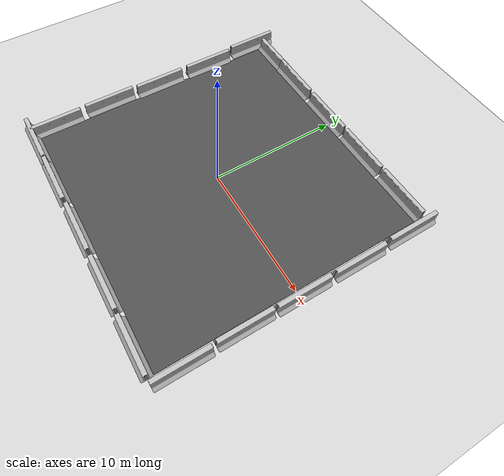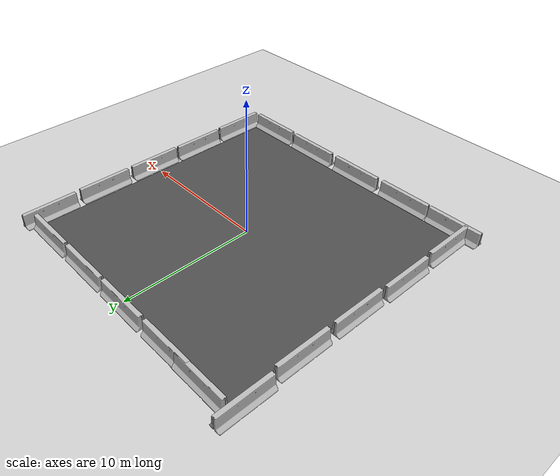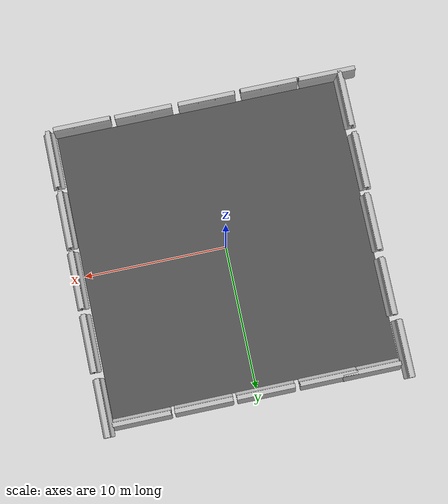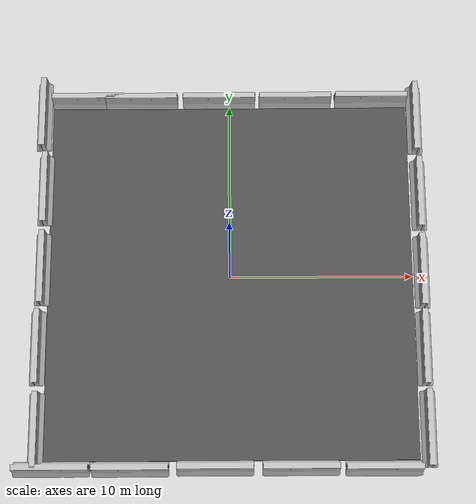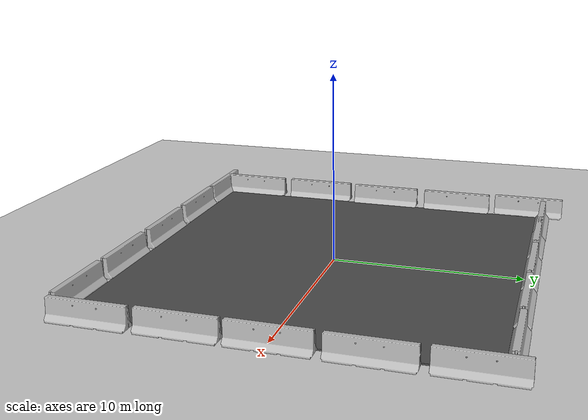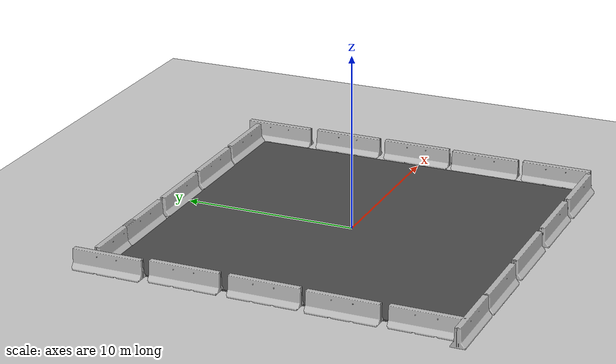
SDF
<sdf version="1.6">
 <world name="default">
  <light name="sun" type="directional">
   <pose>0 0 10 0 -0 0</pose>
   <diffuse>0.8 0.8 0.8 1</diffuse>
   <specular>0.2 0.2 0.2 1</specular>
   <attenuation>
    <range>1000</range>
    <constant>0.9</constant>
    <linear>0.01</linear>
    <quadratic>0.001</quadratic>
   </attenuation>
   <direction>-0.5 0.1 -0.9</direction>
  </light>
  <model name="ground_plane">
   <static>1</static>
   <link name="link">
    <collision name="collision">
     <geometry><plane><normal>0 0 1</normal><size>100 100</size></plane></geometry>
     <surface><friction><ode><mu>100</mu><mu2>50</mu2></ode></friction></surface>
    </collision>
    <visual name="visual">
     <cast_shadows>0</cast_shadows>
     <geometry><plane><normal>0 0 1</normal><size>100 100</size></plane></geometry>
     <material>
      <script><uri>file://media/materials/scripts/gazebo.material</uri><name>Gazebo/Grey</name></script>
     </material>
    </visual>
   </link>
  </model>
  <gravity>0 0 -9.8</gravity>
  <magnetic_field>6e-06 2.3e-05 -4.2e-05</magnetic_field>
  <atmosphere type="adiabatic"/>
  <physics name="default_physics" default="0" type="ode">
   <max_step_size>0.001</max_step_size>
   <real_time_factor>1</real_time_factor>
   <real_time_update_rate>1000</real_time_update_rate>
  </physics>
  <scene><ambient>0.4 0.4 0.4 1</ambient><background>0.7 0.7 0.7 1</background><shadows>1</shadows></scene>
  <audio><device>default</device></audio>
  <spherical_coordinates>
   <surface_model>EARTH_WGS84</surface_model>
   <latitude_deg>0</latitude_deg>
   <longitude_deg>0</longitude_deg>
   <elevation>0</elevation>
   <heading_deg>0</heading_deg>
  </spherical_coordinates>
  <model name="asphalt_plane">
   <static>1</static>
   <link name="link">
    <collision name="collision"><geometry><box><size>20 20 0.1</size></box></geometry></collision>
    <visual name="visual">
     <cast_shadows>0</cast_shadows>
     <geometry><box><size>20 20 0.1</size></box></geometry>
     <material>
      <script>
       <uri>model://asphalt_plane/materials/scripts</uri>
       <uri>model://asphalt_plane/materials/textures</uri>
       <name>vrc/asphalt</name>
      </script>
     </material>
    </visual>
   </link>
   <pose>0.018218 -0.025515 0 0 -0 0</pose>
  </model>
  <model name="jersey_barrier">
   <static>1</static>
   <link name="link">
    <visual name="visual">
     <geometry><mesh><uri>model://jersey_barrier/meshes/jersey_barrier.dae</uri></mesh></geometry>
    </visual>
    <collision name="upright">
     <pose>0 0 0.5715 0 -0 0</pose>
     <geometry><box><size>4.06542 0.3063 1.143</size></box></geometry>
    </collision>
    <collision name="base">
     <pose>0 0 0.032258 0 -0 0</pose>
     <geometry><box><size>4.06542 0.8107 0.064516</size></box></geometry>
    </collision>
    <collision name="base2">
     <pose>0 0 0.1 0 -0 0</pose>
     <geometry><box><size>4.06542 0.65 0.1</size></box></geometry>
    </collision>
    <collision name="base3">
     <pose>0 0 0.2 0 -0 0</pose>
     <geometry><box><size>4.06542 0.5 0.1</size></box></geometry>
    </collision>
    <collision name="left-angle">
     <pose>0 -0.224 0.2401 0.9 -0 0</pose>
     <geometry><box><size>4.06542 0.5 0.064516</size></box></geometry>
    </collision>
    <collision name="right-angle">
     <pose>0 0.224 0.2401 -0.9 0 0</pose>
     <geometry><box><size>4.06542 0.5 0.064516</size></box></geometry>
    </collision>
   </link>
   <pose>8.00558 10.3853 0 0 -0 0</pose>
  </model>
  <model name="jersey_barrier_clone">
   <static>1</static>
   <link name="link">
    <visual name="visual">
     <geometry><mesh><uri>model://jersey_barrier/meshes/jersey_barrier.dae</uri></mesh></geometry>
    </visual>
    <collision name="upright">
     <pose>0 0 0.5715 0 -0 0</pose>
     <geometry><box><size>4.06542 0.3063 1.143</size></box></geometry>
    </collision>
    <collision name="base">
     <pose>0 0 0.032258 0 -0 0</pose>
     <geometry><box><size>4.06542 0.8107 0.064516</size></box></geometry>
    </collision>
    <collision name="base2">
     <pose>0 0 0.1 0 -0 0</pose>
     <geometry><box><size>4.06542 0.65 0.1</size></box></geometry>
    </collision>
    <collision name="base3">
     <pose>0 0 0.2 0 -0 0</pose>
     <geometry><box><size>4.06542 0.5 0.1</size></box></geometry>
    </collision>
    <collision name="left-angle">
     <pose>0 -0.224 0.2401 0.9 -0 0</pose>
     <geometry><box><size>4.06542 0.5 0.064516</size></box></geometry>
    </collision>
    <collision name="right-angle">
     <pose>0 0.224 0.2401 -0.9 0 0</pose>
     <geometry><box><size>4.06542 0.5 0.064516</size></box></geometry>
    </collision>
   </link>
   <pose>3.7224 10.3599 0 0 -0 0</pose>
  </model>
  <model name="jersey_barrier_clone_0">
   <static>1</static>
   <link name="link">
    <visual name="visual">
     <geometry><mesh><uri>model://jersey_barrier/meshes/jersey_barrier.dae</uri></mesh></geometry>
    </visual>
    <collision name="upright">
     <pose>0 0 0.5715 0 -0 0</pose>
     <geometry><box><size>4.06542 0.3063 1.143</size></box></geometry>
    </collision>
    <collision name="base">
     <pose>0 0 0.032258 0 -0 0</pose>
     <geometry><box><size>4.06542 0.8107 0.064516</size></box></geometry>
    </collision>
    <collision name="base2">
     <pose>0 0 0.1 0 -0 0</pose>
     <geometry><box><size>4.06542 0.65 0.1</size></box></geometry>
    </collision>
    <collision name="base3">
     <pose>0 0 0.2 0 -0 0</pose>
     <geometry><box><size>4.06542 0.5 0.1</size></box></geometry>
    </collision>
    <collision name="left-angle">
     <pose>0 -0.224 0.2401 0.9 -0 0</pose>
     <geometry><box><size>4.06542 0.5 0.064516</size></box></geometry>
    </collision>
    <collision name="right-angle">
     <pose>0 0.224 0.2401 -0.9 0 0</pose>
     <geometry><box><size>4.06542 0.5 0.064516</size></box></geometry>
    </collision>
   </link>
   <pose>-0.574842 10.3549 0 0 -0 0</pose>
  </model>
  <model name="jersey_barrier_clone_1">
   <static>1</static>
   <link name="link">
    <visual name="visual">
     <geometry><mesh><uri>model://jersey_barrier/meshes/jersey_barrier.dae</uri></mesh></geometry>
    </visual>
    <collision name="upright">
     <pose>0 0 0.5715 0 -0 0</pose>
     <geometry><box><size>4.06542 0.3063 1.143</size></box></geometry>
    </collision>
    <collision name="base">
     <pose>0 0 0.032258 0 -0 0</pose>
     <geometry><box><size>4.06542 0.8107 0.064516</size></box></geometry>
    </collision>
    <collision name="base2">
     <pose>0 0 0.1 0 -0 0</pose>
     <geometry><box><size>4.06542 0.65 0.1</size></box></geometry>
    </collision>
    <collision name="base3">
     <pose>0 0 0.2 0 -0 0</pose>
     <geometry><box><size>4.06542 0.5 0.1</size></box></geometry>
    </collision>
    <collision name="left-angle">
     <pose>0 -0.224 0.2401 0.9 -0 0</pose>
     <geometry><box><size>4.06542 0.5 0.064516</size></box></geometry>
    </collision>
    <collision name="right-angle">
     <pose>0 0.224 0.2401 -0.9 0 0</pose>
     <geometry><box><size>4.06542 0.5 0.064516</size></box></geometry>
    </collision>
   </link>
   <pose>-4.95286 10.3497 0 0 -0 0</pose>
  </model>
  <model name="jersey_barrier_clone_2">
   <static>1</static>
   <link name="link">
    <visual name="visual">
     <geometry><mesh><uri>model://jersey_barrier/meshes/jersey_barrier.dae</uri></mesh></geometry>
    </visual>
    <collision name="upright">
     <pose>0 0 0.5715 0 -0 0</pose>
     <geometry><box><size>4.06542 0.3063 1.143</size></box></geometry>
    </collision>
    <collision name="base">
     <pose>0 0 0.032258 0 -0 0</pose>
     <geometry><box><size>4.06542 0.8107 0.064516</size></box></geometry>
    </collision>
    <collision name="base2">
     <pose>0 0 0.1 0 -0 0</pose>
     <geometry><box><size>4.06542 0.65 0.1</size></box></geometry>
    </collision>
    <collision name="base3">
     <pose>0 0 0.2 0 -0 0</pose>
     <geometry><box><size>4.06542 0.5 0.1</size></box></geometry>
    </collision>
    <collision name="left-angle">
     <pose>0 -0.224 0.2401 0.9 -0 0</pose>
     <geometry><box><size>4.06542 0.5 0.064516</size></box></geometry>
    </collision>
    <collision name="right-angle">
     <pose>0 0.224 0.2401 -0.9 0 0</pose>
     <geometry><box><size>4.06542 0.5 0.064516</size></box></geometry>
    </collision>
   </link>
   <pose>-7.9448 10.3733 0 0 -0 0</pose>
  </model>
  <model name="jersey_barrier_clone_3">
   <static>1</static>
   <link name="link">
    <visual name="visual">
     <geometry><mesh><uri>model://jersey_barrier/meshes/jersey_barrier.dae</uri></mesh></geometry>
    </visual>
    <collision name="upright">
     <pose>0 0 0.5715 0 -0 0</pose>
     <geometry><box><size>4.06542 0.3063 1.143</size></box></geometry>
    </collision>
    <collision name="base">
     <pose>0 0 0.032258 0 -0 0</pose>
     <geometry><box><size>4.06542 0.8107 0.064516</size></box></geometry>
    </collision>
    <collision name="base2">
     <pose>0 0 0.1 0 -0 0</pose>
     <geometry><box><size>4.06542 0.65 0.1</size></box></geometry>
    </collision>
    <collision name="base3">
     <pose>0 0 0.2 0 -0 0</pose>
     <geometry><box><size>4.06542 0.5 0.1</size></box></geometry>
    </collision>
    <collision name="left-angle">
     <pose>0 -0.224 0.2401 0.9 -0 0</pose>
     <geometry><box><size>4.06542 0.5 0.064516</size></box></geometry>
    </collision>
    <collision name="right-angle">
     <pose>0 0.224 0.2401 -0.9 0 0</pose>
     <geometry><box><size>4.06542 0.5 0.064516</size></box></geometry>
    </collision>
   </link>
   <pose>8.06881 -10.4596 0 0 -0 0</pose>
  </model>
  <model name="jersey_barrier_clone_4">
   <static>1</static>
   <link name="link">
    <visual name="visual">
     <geometry><mesh><uri>model://jersey_barrier/meshes/jersey_barrier.dae</uri></mesh></geometry>
    </visual>
    <collision name="upright">
     <pose>0 0 0.5715 0 -0 0</pose>
     <geometry><box><size>4.06542 0.3063 1.143</size></box></geometry>
    </collision>
    <collision name="base">
     <pose>0 0 0.032258 0 -0 0</pose>
     <geometry><box><size>4.06542 0.8107 0.064516</size></box></geometry>
    </collision>
    <collision name="base2">
     <pose>0 0 0.1 0 -0 0</pose>
     <geometry><box><size>4.06542 0.65 0.1</size></box></geometry>
    </collision>
    <collision name="base3">
     <pose>0 0 0.2 0 -0 0</pose>
     <geometry><box><size>4.06542 0.5 0.1</size></box></geometry>
    </collision>
    <collision name="left-angle">
     <pose>0 -0.224 0.2401 0.9 -0 0</pose>
     <geometry><box><size>4.06542 0.5 0.064516</size></box></geometry>
    </collision>
    <collision name="right-angle">
     <pose>0 0.224 0.2401 -0.9 0 0</pose>
     <geometry><box><size>4.06542 0.5 0.064516</size></box></geometry>
    </collision>
   </link>
   <pose>3.6956 -10.4193 0 0 -0 0</pose>
  </model>
  <model name="jersey_barrier_clone_5">
   <static>1</static>
   <link name="link">
    <visual name="visual">
     <geometry><mesh><uri>model://jersey_barrier/meshes/jersey_barrier.dae</uri></mesh></geometry>
    </visual>
    <collision name="upright">
     <pose>0 0 0.5715 0 -0 0</pose>
     <geometry><box><size>4.06542 0.3063 1.143</size></box></geometry>
    </collision>
    <collision name="base">
     <pose>0 0 0.032258 0 -0 0</pose>
     <geometry><box><size>4.06542 0.8107 0.064516</size></box></geometry>
    </collision>
    <collision name="base2">
     <pose>0 0 0.1 0 -0 0</pose>
     <geometry><box><size>4.06542 0.65 0.1</size></box></geometry>
    </collision>
    <collision name="base3">
     <pose>0 0 0.2 0 -0 0</pose>
     <geometry><box><size>4.06542 0.5 0.1</size></box></geometry>
    </collision>
    <collision name="left-angle">
     <pose>0 -0.224 0.2401 0.9 -0 0</pose>
     <geometry><box><size>4.06542 0.5 0.064516</size></box></geometry>
    </collision>
    <collision name="right-angle">
     <pose>0 0.224 0.2401 -0.9 0 0</pose>
     <geometry><box><size>4.06542 0.5 0.064516</size></box></geometry>
    </collision>
   </link>
   <pose>-0.820207 -10.41 0 0 -0 0</pose>
  </model>
  <model name="jersey_barrier_clone_6">
   <static>1</static>
   <link name="link">
    <visual name="visual">
     <geometry><mesh><uri>model://jersey_barrier/meshes/jersey_barrier.dae</uri></mesh></geometry>
    </visual>
    <collision name="upright">
     <pose>0 0 0.5715 0 -0 0</pose>
     <geometry><box><size>4.06542 0.3063 1.143</size></box></geometry>
    </collision>
    <collision name="base">
     <pose>0 0 0.032258 0 -0 0</pose>
     <geometry><box><size>4.06542 0.8107 0.064516</size></box></geometry>
    </collision>
    <collision name="base2">
     <pose>0 0 0.1 0 -0 0</pose>
     <geometry><box><size>4.06542 0.65 0.1</size></box></geometry>
    </collision>
    <collision name="base3">
     <pose>0 0 0.2 0 -0 0</pose>
     <geometry><box><size>4.06542 0.5 0.1</size></box></geometry>
    </collision>
    <collision name="left-angle">
     <pose>0 -0.224 0.2401 0.9 -0 0</pose>
     <geometry><box><size>4.06542 0.5 0.064516</size></box></geometry>
    </collision>
    <collision name="right-angle">
     <pose>0 0.224 0.2401 -0.9 0 0</pose>
     <geometry><box><size>4.06542 0.5 0.064516</size></box></geometry>
    </collision>
   </link>
   <pose>-5.29473 -10.4432 0 0 -0 0</pose>
  </model>
  <model name="jersey_barrier_clone_7">
   <static>1</static>
   <link name="link">
    <visual name="visual">
     <geometry><mesh><uri>model://jersey_barrier/meshes/jersey_barrier.dae</uri></mesh></geometry>
    </visual>
    <collision name="upright">
     <pose>0 0 0.5715 0 -0 0</pose>
     <geometry><box><size>4.06542 0.3063 1.143</size></box></geometry>
    </collision>
    <collision name="base">
     <pose>0 0 0.032258 0 -0 0</pose>
     <geometry><box><size>4.06542 0.8107 0.064516</size></box></geometry>
    </collision>
    <collision name="base2">
     <pose>0 0 0.1 0 -0 0</pose>
     <geometry><box><size>4.06542 0.65 0.1</size></box></geometry>
    </collision>
    <collision name="base3">
     <pose>0 0 0.2 0 -0 0</pose>
     <geometry><box><size>4.06542 0.5 0.1</size></box></geometry>
    </collision>
    <collision name="left-angle">
     <pose>0 -0.224 0.2401 0.9 -0 0</pose>
     <geometry><box><size>4.06542 0.5 0.064516</size></box></geometry>
    </collision>
    <collision name="right-angle">
     <pose>0 0.224 0.2401 -0.9 0 0</pose>
     <geometry><box><size>4.06542 0.5 0.064516</size></box></geometry>
    </collision>
   </link>
   <pose>-9.46267 -10.4292 0 0 -0 0</pose>
  </model>
  <model name="jersey_barrier_clone_8">
   <static>1</static>
   <link name="link">
    <visual name="visual">
     <geometry><mesh><uri>model://jersey_barrier/meshes/jersey_barrier.dae</uri></mesh></geometry>
    </visual>
    <collision name="upright">
     <pose>0 0 0.5715 0 -0 0</pose>
     <geometry><box><size>4.06542 0.3063 1.143</size></box></geometry>
    </collision>
    <collision name="base">
     <pose>0 0 0.032258 0 -0 0</pose>
     <geometry><box><size>4.06542 0.8107 0.064516</size></box></geometry>
    </collision>
    <collision name="base2">
     <pose>0 0 0.1 0 -0 0</pose>
     <geometry><box><size>4.06542 0.65 0.1</size></box></geometry>
    </collision>
    <collision name="base3">
     <pose>0 0 0.2 0 -0 0</pose>
     <geometry><box><size>4.06542 0.5 0.1</size></box></geometry>
    </collision>
    <collision name="left-angle">
     <pose>0 -0.224 0.2401 0.9 -0 0</pose>
     <geometry><box><size>4.06542 0.5 0.064516</size></box></geometry>
    </collision>
    <collision name="right-angle">
     <pose>0 0.224 0.2401 -0.9 0 0</pose>
     <geometry><box><size>4.06542 0.5 0.064516</size></box></geometry>
    </collision>
   </link>
   <pose>-10.3497 -8.43803 0 0 0 -1.57337</pose>
  </model>
  <model name="jersey_barrier_clone_8_clone">
   <static>1</static>
   <link name="link">
    <visual name="visual">
     <geometry><mesh><uri>model://jersey_barrier/meshes/jersey_barrier.dae</uri></mesh></geometry>
    </visual>
    <collision name="upright">
     <pose>0 0 0.5715 0 -0 0</pose>
     <geometry><box><size>4.06542 0.3063 1.143</size></box></geometry>
    </collision>
    <collision name="base">
     <pose>0 0 0.032258 0 -0 0</pose>
     <geometry><box><size>4.06542 0.8107 0.064516</size></box></geometry>
    </collision>
    <collision name="base2">
     <pose>0 0 0.1 0 -0 0</pose>
     <geometry><box><size>4.06542 0.65 0.1</size></box></geometry>
    </collision>
    <collision name="base3">
     <pose>0 0 0.2 0 -0 0</pose>
     <geometry><box><size>4.06542 0.5 0.1</size></box></geometry>
    </collision>
    <collision name="left-angle">
     <pose>0 -0.224 0.2401 0.9 -0 0</pose>
     <geometry><box><size>4.06542 0.5 0.064516</size></box></geometry>
    </collision>
    <collision name="right-angle">
     <pose>0 0.224 0.2401 -0.9 0 0</pose>
     <geometry><box><size>4.06542 0.5 0.064516</size></box></geometry>
    </collision>
   </link>
   <pose>-10.4085 -3.94138 0 0 0 -1.57337</pose>
  </model>
  <model name="jersey_barrier_clone_8_clone_0">
   <static>1</static>
   <link name="link">
    <visual name="visual">
     <geometry><mesh><uri>model://jersey_barrier/meshes/jersey_barrier.dae</uri></mesh></geometry>
    </visual>
    <collision name="upright">
     <pose>0 0 0.5715 0 -0 0</pose>
     <geometry><box><size>4.06542 0.3063 1.143</size></box></geometry>
    </collision>
    <collision name="base">
     <pose>0 0 0.032258 0 -0 0</pose>
     <geometry><box><size>4.06542 0.8107 0.064516</size></box></geometry>
    </collision>
    <collision name="base2">
     <pose>0 0 0.1 0 -0 0</pose>
     <geometry><box><size>4.06542 0.65 0.1</size></box></geometry>
    </collision>
    <collision name="base3">
     <pose>0 0 0.2 0 -0 0</pose>
     <geometry><box><size>4.06542 0.5 0.1</size></box></geometry>
    </collision>
    <collision name="left-angle">
     <pose>0 -0.224 0.2401 0.9 -0 0</pose>
     <geometry><box><size>4.06542 0.5 0.064516</size></box></geometry>
    </collision>
    <collision name="right-angle">
     <pose>0 0.224 0.2401 -0.9 0 0</pose>
     <geometry><box><size>4.06542 0.5 0.064516</size></box></geometry>
    </collision>
   </link>
   <pose>-10.2793 0.469883 0 0 0 -1.57337</pose>
  </model>
  <model name="jersey_barrier_clone_8_clone_1">
   <static>1</static>
   <link name="link">
    <visual name="visual">
     <geometry><mesh><uri>model://jersey_barrier/meshes/jersey_barrier.dae</uri></mesh></geometry>
    </visual>
    <collision name="upright">
     <pose>0 0 0.5715 0 -0 0</pose>
     <geometry><box><size>4.06542 0.3063 1.143</size></box></geometry>
    </collision>
    <collision name="base">
     <pose>0 0 0.032258 0 -0 0</pose>
     <geometry><box><size>4.06542 0.8107 0.064516</size></box></geometry>
    </collision>
    <collision name="base2">
     <pose>0 0 0.1 0 -0 0</pose>
     <geometry><box><size>4.06542 0.65 0.1</size></box></geometry>
    </collision>
    <collision name="base3">
     <pose>0 0 0.2 0 -0 0</pose>
     <geometry><box><size>4.06542 0.5 0.1</size></box></geometry>
    </collision>
    <collision name="left-angle">
     <pose>0 -0.224 0.2401 0.9 -0 0</pose>
     <geometry><box><size>4.06542 0.5 0.064516</size></box></geometry>
    </collision>
    <collision name="right-angle">
     <pose>0 0.224 0.2401 -0.9 0 0</pose>
     <geometry><box><size>4.06542 0.5 0.064516</size></box></geometry>
    </collision>
   </link>
   <pose>-10.2578 5.03813 0 0 0 -1.57337</pose>
  </model>
  <model name="jersey_barrier_clone_8_clone_2">
   <static>1</static>
   <link name="link">
    <visual name="visual">
     <geometry><mesh><uri>model://jersey_barrier/meshes/jersey_barrier.dae</uri></mesh></geometry>
    </visual>
    <collision name="upright">
     <pose>0 0 0.5715 0 -0 0</pose>
     <geometry><box><size>4.06542 0.3063 1.143</size></box></geometry>
    </collision>
    <collision name="base">
     <pose>0 0 0.032258 0 -0 0</pose>
     <geometry><box><size>4.06542 0.8107 0.064516</size></box></geometry>
    </collision>
    <collision name="base2">
     <pose>0 0 0.1 0 -0 0</pose>
     <geometry><box><size>4.06542 0.65 0.1</size></box></geometry>
    </collision>
    <collision name="base3">
     <pose>0 0 0.2 0 -0 0</pose>
     <geometry><box><size>4.06542 0.5 0.1</size></box></geometry>
    </collision>
    <collision name="left-angle">
     <pose>0 -0.224 0.2401 0.9 -0 0</pose>
     <geometry><box><size>4.06542 0.5 0.064516</size></box></geometry>
    </collision>
    <collision name="right-angle">
     <pose>0 0.224 0.2401 -0.9 0 0</pose>
     <geometry><box><size>4.06542 0.5 0.064516</size></box></geometry>
    </collision>
   </link>
   <pose>-10.4526 9.45713 0 0 0 -1.57337</pose>
  </model>
  <model name="jersey_barrier_clone_8_clone_3">
   <static>1</static>
   <link name="link">
    <visual name="visual">
     <geometry><mesh><uri>model://jersey_barrier/meshes/jersey_barrier.dae</uri></mesh></geometry>
    </visual>
    <collision name="upright">
     <pose>0 0 0.5715 0 -0 0</pose>
     <geometry><box><size>4.06542 0.3063 1.143</size></box></geometry>
    </collision>
    <collision name="base">
     <pose>0 0 0.032258 0 -0 0</pose>
     <geometry><box><size>4.06542 0.8107 0.064516</size></box></geometry>
    </collision>
    <collision name="base2">
     <pose>0 0 0.1 0 -0 0</pose>
     <geometry><box><size>4.06542 0.65 0.1</size></box></geometry>
    </collision>
    <collision name="base3">
     <pose>0 0 0.2 0 -0 0</pose>
     <geometry><box><size>4.06542 0.5 0.1</size></box></geometry>
    </collision>
    <collision name="left-angle">
     <pose>0 -0.224 0.2401 0.9 -0 0</pose>
     <geometry><box><size>4.06542 0.5 0.064516</size></box></geometry>
    </collision>
    <collision name="right-angle">
     <pose>0 0.224 0.2401 -0.9 0 0</pose>
     <geometry><box><size>4.06542 0.5 0.064516</size></box></geometry>
    </collision>
   </link>
   <pose>10.4652 9.12731 0 0 0 -1.57337</pose>
  </model>
  <model name="jersey_barrier_clone_8_clone_4">
   <static>1</static>
   <link name="link">
    <visual name="visual">
     <geometry><mesh><uri>model://jersey_barrier/meshes/jersey_barrier.dae</uri></mesh></geometry>
    </visual>
    <collision name="upright">
     <pose>0 0 0.5715 0 -0 0</pose>
     <geometry><box><size>4.06542 0.3063 1.143</size></box></geometry>
    </collision>
    <collision name="base">
     <pose>0 0 0.032258 0 -0 0</pose>
     <geometry><box><size>4.06542 0.8107 0.064516</size></box></geometry>
    </collision>
    <collision name="base2">
     <pose>0 0 0.1 0 -0 0</pose>
     <geometry><box><size>4.06542 0.65 0.1</size></box></geometry>
    </collision>
    <collision name="base3">
     <pose>0 0 0.2 0 -0 0</pose>
     <geometry><box><size>4.06542 0.5 0.1</size></box></geometry>
    </collision>
    <collision name="left-angle">
     <pose>0 -0.224 0.2401 0.9 -0 0</pose>
     <geometry><box><size>4.06542 0.5 0.064516</size></box></geometry>
    </collision>
    <collision name="right-angle">
     <pose>0 0.224 0.2401 -0.9 0 0</pose>
     <geometry><box><size>4.06542 0.5 0.064516</size></box></geometry>
    </collision>
   </link>
   <pose>10.5235 4.64483 0 0 0 -1.57337</pose>
  </model>
  <model name="jersey_barrier_clone_8_clone_5">
   <static>1</static>
   <link name="link">
    <visual name="visual">
     <geometry><mesh><uri>model://jersey_barrier/meshes/jersey_barrier.dae</uri></mesh></geometry>
    </visual>
    <collision name="upright">
     <pose>0 0 0.5715 0 -0 0</pose>
     <geometry><box><size>4.06542 0.3063 1.143</size></box></geometry>
    </collision>
    <collision name="base">
     <pose>0 0 0.032258 0 -0 0</pose>
     <geometry><box><size>4.06542 0.8107 0.064516</size></box></geometry>
    </collision>
    <collision name="base2">
     <pose>0 0 0.1 0 -0 0</pose>
     <geometry><box><size>4.06542 0.65 0.1</size></box></geometry>
    </collision>
    <collision name="base3">
     <pose>0 0 0.2 0 -0 0</pose>
     <geometry><box><size>4.06542 0.5 0.1</size></box></geometry>
    </collision>
    <collision name="left-angle">
     <pose>0 -0.224 0.2401 0.9 -0 0</pose>
     <geometry><box><size>4.06542 0.5 0.064516</size></box></geometry>
    </collision>
    <collision name="right-angle">
     <pose>0 0.224 0.2401 -0.9 0 0</pose>
     <geometry><box><size>4.06542 0.5 0.064516</size></box></geometry>
    </collision>
   </link>
   <pose>10.508 0.214799 0.015473 0 0 -1.57337</pose>
  </model>
  <model name="jersey_barrier_clone_8_clone_6">
   <static>1</static>
   <link name="link">
    <visual name="visual">
     <geometry><mesh><uri>model://jersey_barrier/meshes/jersey_barrier.dae</uri></mesh></geometry>
    </visual>
    <collision name="upright">
     <pose>0 0 0.5715 0 -0 0</pose>
     <geometry><box><size>4.06542 0.3063 1.143</size></box></geometry>
    </collision>
    <collision name="base">
     <pose>0 0 0.032258 0 -0 0</pose>
     <geometry><box><size>4.06542 0.8107 0.064516</size></box></geometry>
    </collision>
    <collision name="base2">
     <pose>0 0 0.1 0 -0 0</pose>
     <geometry><box><size>4.06542 0.65 0.1</size></box></geometry>
    </collision>
    <collision name="base3">
     <pose>0 0 0.2 0 -0 0</pose>
     <geometry><box><size>4.06542 0.5 0.1</size></box></geometry>
    </collision>
    <collision name="left-angle">
     <pose>0 -0.224 0.2401 0.9 -0 0</pose>
     <geometry><box><size>4.06542 0.5 0.064516</size></box></geometry>
    </collision>
    <collision name="right-angle">
     <pose>0 0.224 0.2401 -0.9 0 0</pose>
     <geometry><box><size>4.06542 0.5 0.064516</size></box></geometry>
    </collision>
   </link>
   <pose>10.462 -4.06846 0 0 0 -1.57337</pose>
  </model>
  <model name="jersey_barrier_clone_8_clone_7">
   <static>1</static>
   <link name="link">
    <visual name="visual">
     <geometry><mesh><uri>model://jersey_barrier/meshes/jersey_barrier.dae</uri></mesh></geometry>
    </visual>
    <collision name="upright">
     <pose>0 0 0.5715 0 -0 0</pose>
     <geometry><box><size>4.06542 0.3063 1.143</size></box></geometry>
    </collision>
    <collision name="base">
     <pose>0 0 0.032258 0 -0 0</pose>
     <geometry><box><size>4.06542 0.8107 0.064516</size></box></geometry>
    </collision>
    <collision name="base2">
     <pose>0 0 0.1 0 -0 0</pose>
     <geometry><box><size>4.06542 0.65 0.1</size></box></geometry>
    </collision>
    <collision name="base3">
     <pose>0 0 0.2 0 -0 0</pose>
     <geometry><box><size>4.06542 0.5 0.1</size></box></geometry>
    </collision>
    <collision name="left-angle">
     <pose>0 -0.224 0.2401 0.9 -0 0</pose>
     <geometry><box><size>4.06542 0.5 0.064516</size></box></geometry>
    </collision>
    <collision name="right-angle">
     <pose>0 0.224 0.2401 -0.9 0 0</pose>
     <geometry><box><size>4.06542 0.5 0.064516</size></box></geometry>
    </collision>
   </link>
   <pose>10.5124 -8.41466 0 0 0 -1.57337</pose>
  </model>
 </world>
</sdf>
